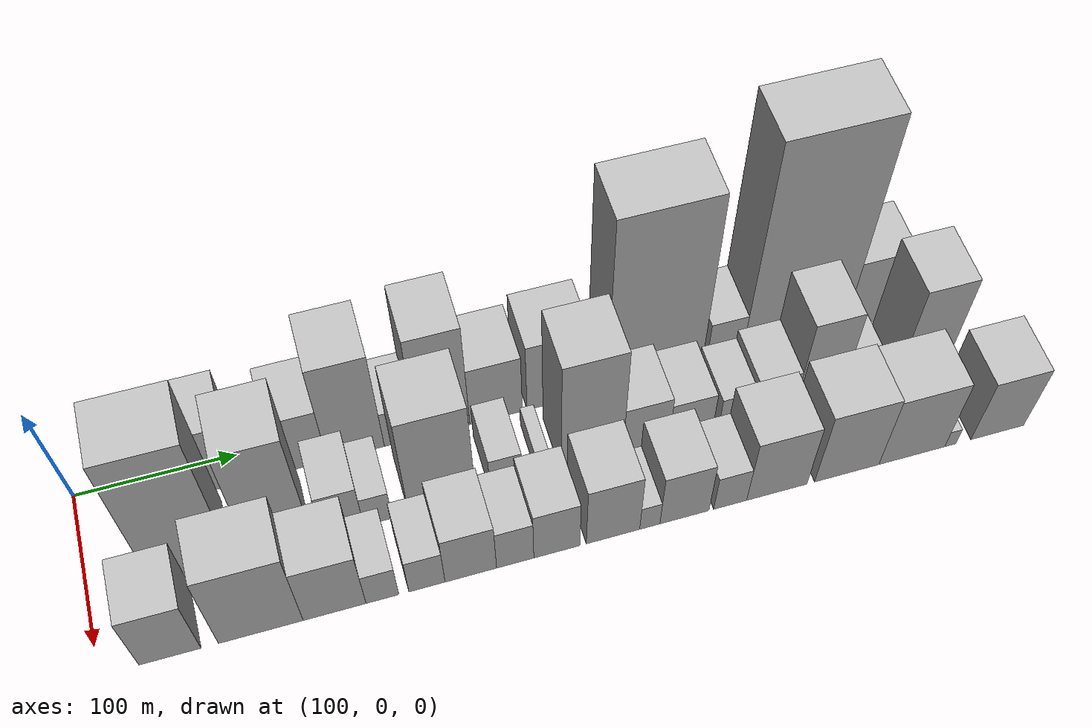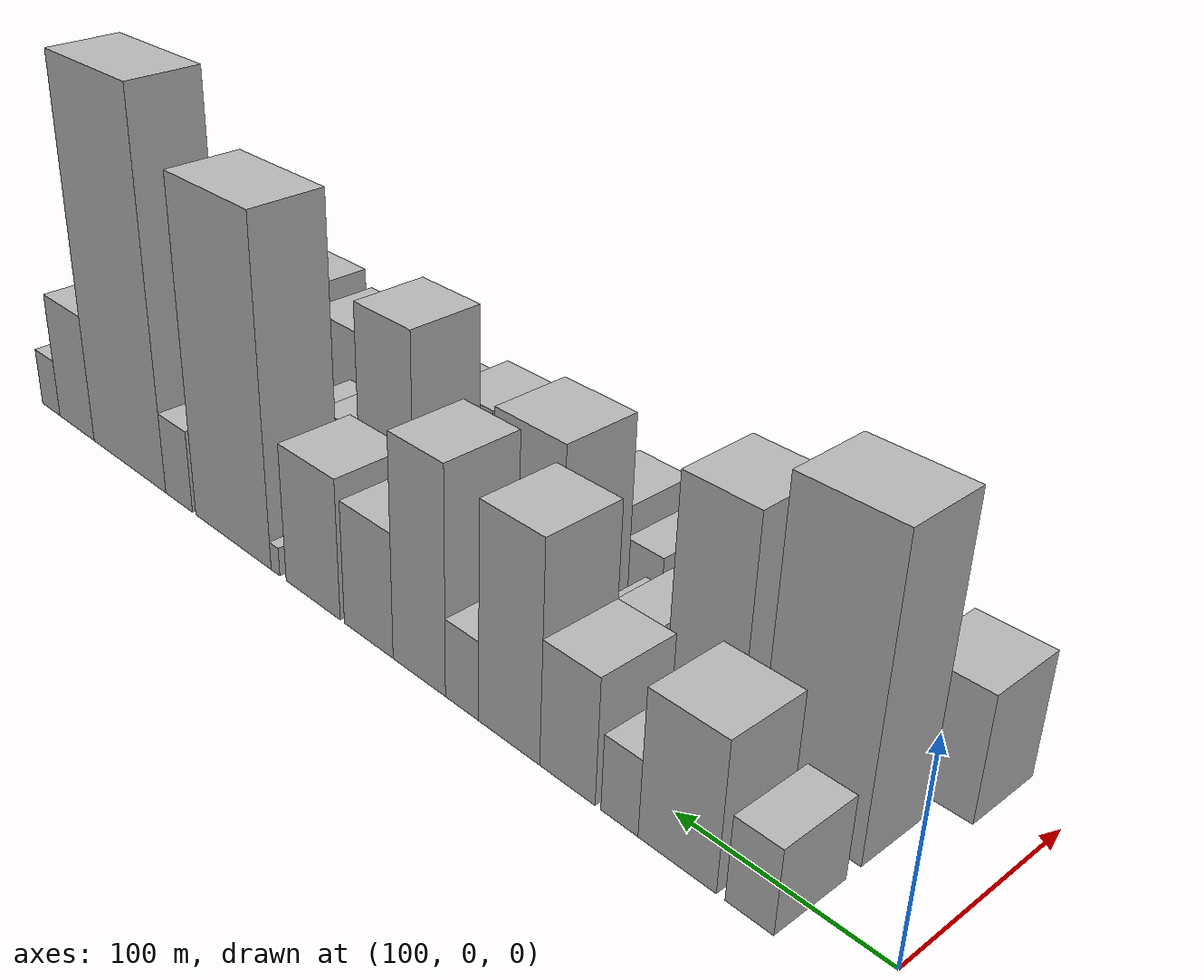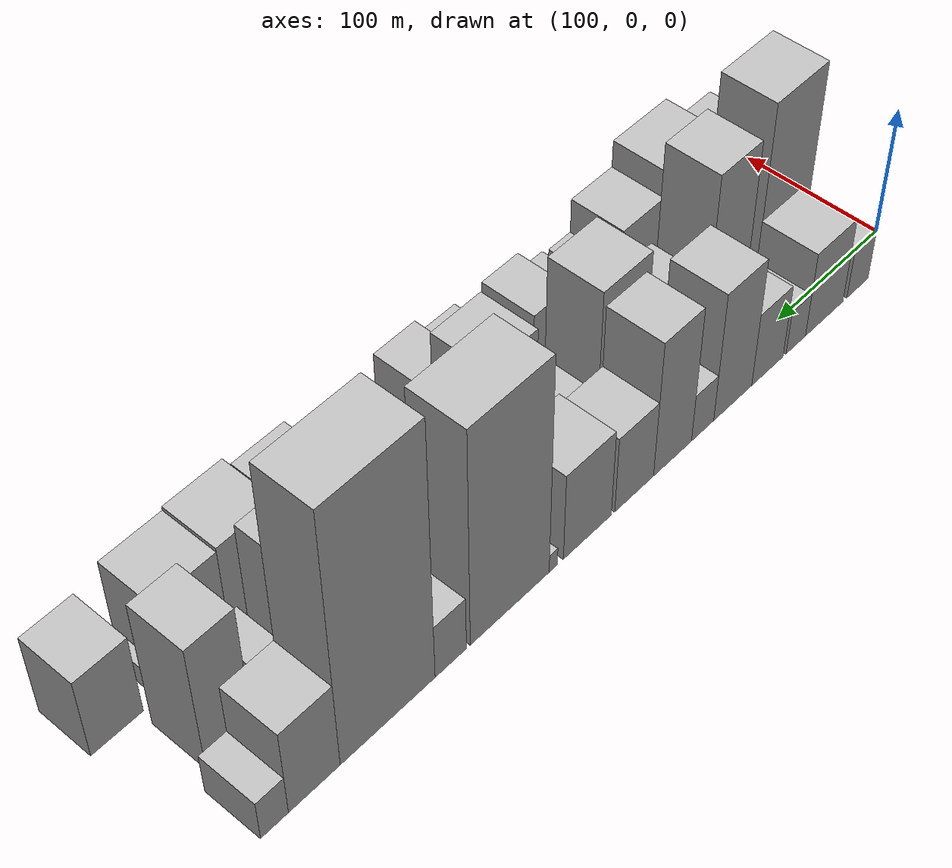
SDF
<sdf version="1.6">
 <world name="default">
  <model name="building_16">
   <static>1</static>
   <pose>100.0000 47.8059 0 0.000000 0.000000 0.000000</pose>
   <link name="link">
    <pose>0 0 19.50 0 0 0</pose>
    <collision name="collision"><geometry><box><size>40.0000 21.7824 39.0000</size></box></geometry></collision>
    <visual name="visual">
     <cast_shadows>0</cast_shadows>
     <geometry><box><size>40.0000 21.7824 39.0000</size></box></geometry>
     <material>
      <script>
       <uri>model://HANNAS_wall/materials/scripts</uri>
       <uri>model://HANNAS_wall/materials/textures</uri>
       <name>vrc/HANNAS_wall</name>
      </script>
     </material>
    </visual>
   </link>
  </model>
  <model name="building_17">
   <static>1</static>
   <pose>100.0000 81.5890 0 0.000000 0.000000 0.000000</pose>
   <link name="link">
    <pose>0 0 34.50 0 0 0</pose>
    <collision name="collision"><geometry><box><size>40.0000 37.7838 69.0000</size></box></geometry></collision>
    <visual name="visual">
     <cast_shadows>0</cast_shadows>
     <geometry><box><size>40.0000 37.7838 69.0000</size></box></geometry>
     <material>
      <script>
       <uri>model://HANNAS_wall/materials/scripts</uri>
       <uri>model://HANNAS_wall/materials/textures</uri>
       <name>vrc/HANNAS_wall</name>
      </script>
     </material>
    </visual>
   </link>
  </model>
  <model name="building_18">
   <static>1</static>
   <pose>100.0000 110.0297 0 0.000000 0.000000 0.000000</pose>
   <link name="link">
    <pose>0 0 18.00 0 0 0</pose>
    <collision name="collision"><geometry><box><size>40.0000 19.0977 36.0000</size></box></geometry></collision>
    <visual name="visual">
     <cast_shadows>0</cast_shadows>
     <geometry><box><size>40.0000 19.0977 36.0000</size></box></geometry>
     <material>
      <script>
       <uri>model://HANNAS_wall/materials/scripts</uri>
       <uri>model://HANNAS_wall/materials/textures</uri>
       <name>vrc/HANNAS_wall</name>
      </script>
     </material>
    </visual>
   </link>
  </model>
  <model name="building_19">
   <static>1</static>
   <pose>100.0000 137.6985 0 0.000000 0.000000 0.000000</pose>
   <link name="link">
    <pose>0 0 30.00 0 0 0</pose>
    <collision name="collision"><geometry><box><size>40.0000 30.2399 60.0000</size></box></geometry></collision>
    <visual name="visual">
     <cast_shadows>0</cast_shadows>
     <geometry><box><size>40.0000 30.2399 60.0000</size></box></geometry>
     <material>
      <script>
       <uri>model://HANNAS_wall/materials/scripts</uri>
       <uri>model://HANNAS_wall/materials/textures</uri>
       <name>vrc/HANNAS_wall</name>
      </script>
     </material>
    </visual>
   </link>
  </model>
  <model name="building_20">
   <static>1</static>
   <pose>100.0000 170.7116 0 0.000000 0.000000 0.000000</pose>
   <link name="link">
    <pose>0 0 52.50 0 0 0</pose>
    <collision name="collision"><geometry><box><size>40.0000 35.7862 105.0000</size></box></geometry></collision>
    <visual name="visual">
     <cast_shadows>0</cast_shadows>
     <geometry><box><size>40.0000 35.7862 105.0000</size></box></geometry>
     <material>
      <script>
       <uri>model://HANNAS_wall/materials/scripts</uri>
       <uri>model://HANNAS_wall/materials/textures</uri>
       <name>vrc/HANNAS_wall</name>
      </script>
     </material>
    </visual>
   </link>
  </model>
  <model name="building_21">
   <static>1</static>
   <pose>100.0000 198.8116 0 0.000000 0.000000 0.000000</pose>
   <link name="link">
    <pose>0 0 19.50 0 0 0</pose>
    <collision name="collision"><geometry><box><size>40.0000 20.4138 39.0000</size></box></geometry></collision>
    <visual name="visual">
     <cast_shadows>0</cast_shadows>
     <geometry><box><size>40.0000 20.4138 39.0000</size></box></geometry>
     <material>
      <script>
       <uri>model://HANNAS_wall/materials/scripts</uri>
       <uri>model://HANNAS_wall/materials/textures</uri>
       <name>vrc/HANNAS_wall</name>
      </script>
     </material>
    </visual>
   </link>
  </model>
  <model name="building_22">
   <static>1</static>
   <pose>100.0000 226.1060 0 0.000000 0.000000 0.000000</pose>
   <link name="link">
    <pose>0 0 55.50 0 0 0</pose>
    <collision name="collision"><geometry><box><size>40.0000 34.1748 111.0000</size></box></geometry></collision>
    <visual name="visual">
     <cast_shadows>0</cast_shadows>
     <geometry><box><size>40.0000 34.1748 111.0000</size></box></geometry>
     <material>
      <script>
       <uri>model://HANNAS_wall/materials/scripts</uri>
       <uri>model://HANNAS_wall/materials/textures</uri>
       <name>vrc/HANNAS_wall</name>
      </script>
     </material>
    </visual>
   </link>
  </model>
  <model name="building_23">
   <static>1</static>
   <pose>100.0000 260.1984 0 0.000000 0.000000 0.000000</pose>
   <link name="link">
    <pose>0 0 31.50 0 0 0</pose>
    <collision name="collision"><geometry><box><size>40.0000 34.0099 63.0000</size></box></geometry></collision>
    <visual name="visual">
     <cast_shadows>0</cast_shadows>
     <geometry><box><size>40.0000 34.0099 63.0000</size></box></geometry>
     <material>
      <script>
       <uri>model://HANNAS_wall/materials/scripts</uri>
       <uri>model://HANNAS_wall/materials/textures</uri>
       <name>vrc/HANNAS_wall</name>
      </script>
     </material>
    </visual>
   </link>
  </model>
  <model name="building_24">
   <static>1</static>
   <pose>100.0000 300.5038 0 0.000000 0.000000 0.000000</pose>
   <link name="link">
    <pose>0 0 36.00 0 0 0</pose>
    <collision name="collision"><geometry><box><size>40.0000 40.6009 72.0000</size></box></geometry></collision>
    <visual name="visual">
     <cast_shadows>0</cast_shadows>
     <geometry><box><size>40.0000 40.6009 72.0000</size></box></geometry>
     <material>
      <script>
       <uri>model://HANNAS_wall/materials/scripts</uri>
       <uri>model://HANNAS_wall/materials/textures</uri>
       <name>vrc/HANNAS_wall</name>
      </script>
     </material>
    </visual>
   </link>
  </model>
  <model name="building_25">
   <static>1</static>
   <pose>100.0000 329.2157 0 0.000000 0.000000 0.000000</pose>
   <link name="link">
    <pose>0 0 7.50 0 0 0</pose>
    <collision name="collision"><geometry><box><size>40.0000 6.8229 15.0000</size></box></geometry></collision>
    <visual name="visual">
     <cast_shadows>0</cast_shadows>
     <geometry><box><size>40.0000 6.8229 15.0000</size></box></geometry>
     <material>
      <script>
       <uri>model://HANNAS_wall/materials/scripts</uri>
       <uri>model://HANNAS_wall/materials/textures</uri>
       <name>vrc/HANNAS_wall</name>
      </script>
     </material>
    </visual>
   </link>
  </model>
  <model name="building_26">
   <static>1</static>
   <pose>100.0000 364.3298 0 0.000000 0.000000 0.000000</pose>
   <link name="link">
    <pose>0 0 88.50 0 0 0</pose>
    <collision name="collision"><geometry><box><size>40.0000 63.4053 177.0000</size></box></geometry></collision>
    <visual name="visual">
     <cast_shadows>0</cast_shadows>
     <geometry><box><size>40.0000 63.4053 177.0000</size></box></geometry>
     <material>
      <script>
       <uri>model://HANNAS_wall/materials/scripts</uri>
       <uri>model://HANNAS_wall/materials/textures</uri>
       <name>vrc/HANNAS_wall</name>
      </script>
     </material>
    </visual>
   </link>
  </model>
  <model name="building_27">
   <static>1</static>
   <pose>100.0000 411.1410 0 0.000000 0.000000 0.000000</pose>
   <link name="link">
    <pose>0 0 22.50 0 0 0</pose>
    <collision name="collision"><geometry><box><size>40.0000 24.2172 45.0000</size></box></geometry></collision>
    <visual name="visual">
     <cast_shadows>0</cast_shadows>
     <geometry><box><size>40.0000 24.2172 45.0000</size></box></geometry>
     <material>
      <script>
       <uri>model://HANNAS_wall/materials/scripts</uri>
       <uri>model://HANNAS_wall/materials/textures</uri>
       <name>vrc/HANNAS_wall</name>
      </script>
     </material>
    </visual>
   </link>
  </model>
  <model name="building_28">
   <static>1</static>
   <pose>100.0000 458.4552 0 0.000000 0.000000 0.000000</pose>
   <link name="link">
    <pose>0 0 105.00 0 0 0</pose>
    <collision name="collision"><geometry><box><size>40.0000 70.4112 210.0000</size></box></geometry></collision>
    <visual name="visual">
     <cast_shadows>0</cast_shadows>
     <geometry><box><size>40.0000 70.4112 210.0000</size></box></geometry>
     <material>
      <script>
       <uri>model://HANNAS_wall/materials/scripts</uri>
       <uri>model://HANNAS_wall/materials/textures</uri>
       <name>vrc/HANNAS_wall</name>
      </script>
     </material>
    </visual>
   </link>
  </model>
  <model name="building_29">
   <static>1</static>
   <pose>100.0000 511.9510 0 0.000000 0.000000 0.000000</pose>
   <link name="link">
    <pose>0 0 36.00 0 0 0</pose>
    <collision name="collision"><geometry><box><size>40.0000 36.5804 72.0000</size></box></geometry></collision>
    <visual name="visual">
     <cast_shadows>0</cast_shadows>
     <geometry><box><size>40.0000 36.5804 72.0000</size></box></geometry>
     <material>
      <script>
       <uri>model://HANNAS_wall/materials/scripts</uri>
       <uri>model://HANNAS_wall/materials/textures</uri>
       <name>vrc/HANNAS_wall</name>
      </script>
     </material>
    </visual>
   </link>
  </model>
  <model name="building_30">
   <static>1</static>
   <pose>100.0000 539.8981 0 0.000000 0.000000 0.000000</pose>
   <link name="link">
    <pose>0 0 16.50 0 0 0</pose>
    <collision name="collision"><geometry><box><size>40.0000 19.3137 33.0000</size></box></geometry></collision>
    <visual name="visual">
     <cast_shadows>0</cast_shadows>
     <geometry><box><size>40.0000 19.3137 33.0000</size></box></geometry>
     <material>
      <script>
       <uri>model://HANNAS_wall/materials/scripts</uri>
       <uri>model://HANNAS_wall/materials/textures</uri>
       <name>vrc/HANNAS_wall</name>
      </script>
     </material>
    </visual>
   </link>
  </model>
  <model name="building_46">
   <static>1</static>
   <pose>149.0000 61.2822 0 0.000000 0.000000 0.000000</pose>
   <link name="link">
    <pose>0 0 72.00 0 0 0</pose>
    <collision name="collision"><geometry><box><size>40.0000 48.5079 144.0000</size></box></geometry></collision>
    <visual name="visual">
     <cast_shadows>0</cast_shadows>
     <geometry><box><size>40.0000 48.5079 144.0000</size></box></geometry>
     <material>
      <script>
       <uri>model://HANNAS_wall/materials/scripts</uri>
       <uri>model://HANNAS_wall/materials/textures</uri>
       <name>vrc/HANNAS_wall</name>
      </script>
     </material>
    </visual>
   </link>
  </model>
  <model name="building_47">
   <static>1</static>
   <pose>149.0000 114.5790 0 0.000000 0.000000 0.000000</pose>
   <link name="link">
    <pose>0 0 61.50 0 0 0</pose>
    <collision name="collision"><geometry><box><size>40.0000 38.0858 123.0000</size></box></geometry></collision>
    <visual name="visual">
     <cast_shadows>0</cast_shadows>
     <geometry><box><size>40.0000 38.0858 123.0000</size></box></geometry>
     <material>
      <script>
       <uri>model://HANNAS_wall/materials/scripts</uri>
       <uri>model://HANNAS_wall/materials/textures</uri>
       <name>vrc/HANNAS_wall</name>
      </script>
     </material>
    </visual>
   </link>
  </model>
  <model name="building_48">
   <static>1</static>
   <pose>149.0000 152.1578 0 0.000000 0.000000 0.000000</pose>
   <link name="link">
    <pose>0 0 24.00 0 0 0</pose>
    <collision name="collision"><geometry><box><size>40.0000 25.0718 48.0000</size></box></geometry></collision>
    <visual name="visual">
     <cast_shadows>0</cast_shadows>
     <geometry><box><size>40.0000 25.0718 48.0000</size></box></geometry>
     <material>
      <script>
       <uri>model://HANNAS_wall/materials/scripts</uri>
       <uri>model://HANNAS_wall/materials/textures</uri>
       <name>vrc/HANNAS_wall</name>
      </script>
     </material>
    </visual>
   </link>
  </model>
  <model name="building_49">
   <static>1</static>
   <pose>149.0000 173.4422 0 0.000000 0.000000 0.000000</pose>
   <link name="link">
    <pose>0 0 16.50 0 0 0</pose>
    <collision name="collision"><geometry><box><size>40.0000 17.4969 33.0000</size></box></geometry></collision>
    <visual name="visual">
     <cast_shadows>0</cast_shadows>
     <geometry><box><size>40.0000 17.4969 33.0000</size></box></geometry>
     <material>
      <script>
       <uri>model://HANNAS_wall/materials/scripts</uri>
       <uri>model://HANNAS_wall/materials/textures</uri>
       <name>vrc/HANNAS_wall</name>
      </script>
     </material>
    </visual>
   </link>
  </model>
  <model name="building_50">
   <static>1</static>
   <pose>149.0000 213.1417 0 0.000000 0.000000 0.000000</pose>
   <link name="link">
    <pose>0 0 54.00 0 0 0</pose>
    <collision name="collision"><geometry><box><size>40.0000 41.9022 108.0000</size></box></geometry></collision>
    <visual name="visual">
     <cast_shadows>0</cast_shadows>
     <geometry><box><size>40.0000 41.9022 108.0000</size></box></geometry>
     <material>
      <script>
       <uri>model://HANNAS_wall/materials/scripts</uri>
       <uri>model://HANNAS_wall/materials/textures</uri>
       <name>vrc/HANNAS_wall</name>
      </script>
     </material>
    </visual>
   </link>
  </model>
  <model name="building_51">
   <static>1</static>
   <pose>149.0000 253.2332 0 0.000000 0.000000 0.000000</pose>
   <link name="link">
    <pose>0 0 19.50 0 0 0</pose>
    <collision name="collision"><geometry><box><size>40.0000 20.2807 39.0000</size></box></geometry></collision>
    <visual name="visual">
     <cast_shadows>0</cast_shadows>
     <geometry><box><size>40.0000 20.2807 39.0000</size></box></geometry>
     <material>
      <script>
       <uri>model://HANNAS_wall/materials/scripts</uri>
       <uri>model://HANNAS_wall/materials/textures</uri>
       <name>vrc/HANNAS_wall</name>
      </script>
     </material>
    </visual>
   </link>
  </model>
  <model name="building_52">
   <static>1</static>
   <pose>149.0000 277.7060 0 0.000000 0.000000 0.000000</pose>
   <link name="link">
    <pose>0 0 10.50 0 0 0</pose>
    <collision name="collision"><geometry><box><size>40.0000 8.6649 21.0000</size></box></geometry></collision>
    <visual name="visual">
     <cast_shadows>0</cast_shadows>
     <geometry><box><size>40.0000 8.6649 21.0000</size></box></geometry>
     <material>
      <script>
       <uri>model://HANNAS_wall/materials/scripts</uri>
       <uri>model://HANNAS_wall/materials/textures</uri>
       <name>vrc/HANNAS_wall</name>
      </script>
     </material>
    </visual>
   </link>
  </model>
  <model name="building_53">
   <static>1</static>
   <pose>149.0000 307.6870 0 0.000000 0.000000 0.000000</pose>
   <link name="link">
    <pose>0 0 61.50 0 0 0</pose>
    <collision name="collision"><geometry><box><size>40.0000 39.2970 123.0000</size></box></geometry></collision>
    <visual name="visual">
     <cast_shadows>0</cast_shadows>
     <geometry><box><size>40.0000 39.2970 123.0000</size></box></geometry>
     <material>
      <script>
       <uri>model://HANNAS_wall/materials/scripts</uri>
       <uri>model://HANNAS_wall/materials/textures</uri>
       <name>vrc/HANNAS_wall</name>
      </script>
     </material>
    </visual>
   </link>
  </model>
  <model name="building_54">
   <static>1</static>
   <pose>149.0000 342.2039 0 0.000000 0.000000 0.000000</pose>
   <link name="link">
    <pose>0 0 28.50 0 0 0</pose>
    <collision name="collision"><geometry><box><size>40.0000 29.7369 57.0000</size></box></geometry></collision>
    <visual name="visual">
     <cast_shadows>0</cast_shadows>
     <geometry><box><size>40.0000 29.7369 57.0000</size></box></geometry>
     <material>
      <script>
       <uri>model://HANNAS_wall/materials/scripts</uri>
       <uri>model://HANNAS_wall/materials/textures</uri>
       <name>vrc/HANNAS_wall</name>
      </script>
     </material>
    </visual>
   </link>
  </model>
  <model name="building_55">
   <static>1</static>
   <pose>149.0000 371.1947 0 0.000000 0.000000 0.000000</pose>
   <link name="link">
    <pose>0 0 24.00 0 0 0</pose>
    <collision name="collision"><geometry><box><size>40.0000 28.2446 48.0000</size></box></geometry></collision>
    <visual name="visual">
     <cast_shadows>0</cast_shadows>
     <geometry><box><size>40.0000 28.2446 48.0000</size></box></geometry>
     <material>
      <script>
       <uri>model://HANNAS_wall/materials/scripts</uri>
       <uri>model://HANNAS_wall/materials/textures</uri>
       <name>vrc/HANNAS_wall</name>
      </script>
     </material>
    </visual>
   </link>
  </model>
  <model name="building_56">
   <static>1</static>
   <pose>149.0000 400.7414 0 0.000000 0.000000 0.000000</pose>
   <link name="link">
    <pose>0 0 19.50 0 0 0</pose>
    <collision name="collision"><geometry><box><size>40.0000 22.8489 39.0000</size></box></geometry></collision>
    <visual name="visual">
     <cast_shadows>0</cast_shadows>
     <geometry><box><size>40.0000 22.8489 39.0000</size></box></geometry>
     <material>
      <script>
       <uri>model://HANNAS_wall/materials/scripts</uri>
       <uri>model://HANNAS_wall/materials/textures</uri>
       <name>vrc/HANNAS_wall</name>
      </script>
     </material>
    </visual>
   </link>
  </model>
  <model name="building_57">
   <static>1</static>
   <pose>149.0000 425.8317 0 0.000000 0.000000 0.000000</pose>
   <link name="link">
    <pose>0 0 24.00 0 0 0</pose>
    <collision name="collision"><geometry><box><size>40.0000 27.3317 48.0000</size></box></geometry></collision>
    <visual name="visual">
     <cast_shadows>0</cast_shadows>
     <geometry><box><size>40.0000 27.3317 48.0000</size></box></geometry>
     <material>
      <script>
       <uri>model://HANNAS_wall/materials/scripts</uri>
       <uri>model://HANNAS_wall/materials/textures</uri>
       <name>vrc/HANNAS_wall</name>
      </script>
     </material>
    </visual>
   </link>
  </model>
  <model name="building_58">
   <static>1</static>
   <pose>149.0000 454.8856 0 0.000000 0.000000 0.000000</pose>
   <link name="link">
    <pose>0 0 49.50 0 0 0</pose>
    <collision name="collision"><geometry><box><size>40.0000 30.7761 99.0000</size></box></geometry></collision>
    <visual name="visual">
     <cast_shadows>0</cast_shadows>
     <geometry><box><size>40.0000 30.7761 99.0000</size></box></geometry>
     <material>
      <script>
       <uri>model://HANNAS_wall/materials/scripts</uri>
       <uri>model://HANNAS_wall/materials/textures</uri>
       <name>vrc/HANNAS_wall</name>
      </script>
     </material>
    </visual>
   </link>
  </model>
  <model name="building_59">
   <static>1</static>
   <pose>149.0000 486.8219 0 0.000000 0.000000 0.000000</pose>
   <link name="link">
    <pose>0 0 18.00 0 0 0</pose>
    <collision name="collision"><geometry><box><size>40.0000 21.0964 36.0000</size></box></geometry></collision>
    <visual name="visual">
     <cast_shadows>0</cast_shadows>
     <geometry><box><size>40.0000 21.0964 36.0000</size></box></geometry>
     <material>
      <script>
       <uri>model://HANNAS_wall/materials/scripts</uri>
       <uri>model://HANNAS_wall/materials/textures</uri>
       <name>vrc/HANNAS_wall</name>
      </script>
     </material>
    </visual>
   </link>
  </model>
  <model name="building_60">
   <static>1</static>
   <pose>149.0000 523.8615 0 0.000000 0.000000 0.000000</pose>
   <link name="link">
    <pose>0 0 52.50 0 0 0</pose>
    <collision name="collision"><geometry><box><size>40.0000 32.9828 105.0000</size></box></geometry></collision>
    <visual name="visual">
     <cast_shadows>0</cast_shadows>
     <geometry><box><size>40.0000 32.9828 105.0000</size></box></geometry>
     <material>
      <script>
       <uri>model://HANNAS_wall/materials/scripts</uri>
       <uri>model://HANNAS_wall/materials/textures</uri>
       <name>vrc/HANNAS_wall</name>
      </script>
     </material>
    </visual>
   </link>
  </model>
  <model name="building_77">
   <static>1</static>
   <pose>198.0000 40.7217 0 0.000000 0.000000 0.000000</pose>
   <link name="link">
    <pose>0 0 30.00 0 0 0</pose>
    <collision name="collision"><geometry><box><size>40.0000 35.5765 60.0000</size></box></geometry></collision>
    <visual name="visual">
     <cast_shadows>0</cast_shadows>
     <geometry><box><size>40.0000 35.5765 60.0000</size></box></geometry>
     <material>
      <script>
       <uri>model://HANNAS_wall/materials/scripts</uri>
       <uri>model://HANNAS_wall/materials/textures</uri>
       <name>vrc/HANNAS_wall</name>
      </script>
     </material>
    </visual>
   </link>
  </model>
  <model name="building_78">
   <static>1</static>
   <pose>198.0000 93.2149 0 0.000000 0.000000 0.000000</pose>
   <link name="link">
    <pose>0 0 42.00 0 0 0</pose>
    <collision name="collision"><geometry><box><size>40.0000 49.4100 84.0000</size></box></geometry></collision>
    <visual name="visual">
     <cast_shadows>0</cast_shadows>
     <geometry><box><size>40.0000 49.4100 84.0000</size></box></geometry>
     <material>
      <script>
       <uri>model://HANNAS_wall/materials/scripts</uri>
       <uri>model://HANNAS_wall/materials/textures</uri>
       <name>vrc/HANNAS_wall</name>
      </script>
     </material>
    </visual>
   </link>
  </model>
  <model name="building_79">
   <static>1</static>
   <pose>198.0000 136.4862 0 0.000000 0.000000 0.000000</pose>
   <link name="link">
    <pose>0 0 31.50 0 0 0</pose>
    <collision name="collision"><geometry><box><size>40.0000 37.1326 63.0000</size></box></geometry></collision>
    <visual name="visual">
     <cast_shadows>0</cast_shadows>
     <geometry><box><size>40.0000 37.1326 63.0000</size></box></geometry>
     <material>
      <script>
       <uri>model://HANNAS_wall/materials/scripts</uri>
       <uri>model://HANNAS_wall/materials/textures</uri>
       <name>vrc/HANNAS_wall</name>
      </script>
     </material>
    </visual>
   </link>
  </model>
  <model name="building_80">
   <static>1</static>
   <pose>198.0000 164.8287 0 0.000000 0.000000 0.000000</pose>
   <link name="link">
    <pose>0 0 18.00 0 0 0</pose>
    <collision name="collision"><geometry><box><size>40.0000 19.5524 36.0000</size></box></geometry></collision>
    <visual name="visual">
     <cast_shadows>0</cast_shadows>
     <geometry><box><size>40.0000 19.5524 36.0000</size></box></geometry>
     <material>
      <script>
       <uri>model://HANNAS_wall/materials/scripts</uri>
       <uri>model://HANNAS_wall/materials/textures</uri>
       <name>vrc/HANNAS_wall</name>
      </script>
     </material>
    </visual>
   </link>
  </model>
  <model name="building_81">
   <static>1</static>
   <pose>198.0000 191.5142 0 0.000000 0.000000 0.000000</pose>
   <link name="link">
    <pose>0 0 19.50 0 0 0</pose>
    <collision name="collision"><geometry><box><size>40.0000 21.8186 39.0000</size></box></geometry></collision>
    <visual name="visual">
     <cast_shadows>0</cast_shadows>
     <geometry><box><size>40.0000 21.8186 39.0000</size></box></geometry>
     <material>
      <script>
       <uri>model://HANNAS_wall/materials/scripts</uri>
       <uri>model://HANNAS_wall/materials/textures</uri>
       <name>vrc/HANNAS_wall</name>
      </script>
     </material>
    </visual>
   </link>
  </model>
  <model name="building_82">
   <static>1</static>
   <pose>198.0000 218.0733 0 0.000000 0.000000 0.000000</pose>
   <link name="link">
    <pose>0 0 27.00 0 0 0</pose>
    <collision name="collision"><geometry><box><size>40.0000 31.2995 54.0000</size></box></geometry></collision>
    <visual name="visual">
     <cast_shadows>0</cast_shadows>
     <geometry><box><size>40.0000 31.2995 54.0000</size></box></geometry>
     <material>
      <script>
       <uri>model://HANNAS_wall/materials/scripts</uri>
       <uri>model://HANNAS_wall/materials/textures</uri>
       <name>vrc/HANNAS_wall</name>
      </script>
     </material>
    </visual>
   </link>
  </model>
  <model name="building_83">
   <static>1</static>
   <pose>198.0000 245.1449 0 0.000000 0.000000 0.000000</pose>
   <link name="link">
    <pose>0 0 22.50 0 0 0</pose>
    <collision name="collision"><geometry><box><size>40.0000 22.8438 45.0000</size></box></geometry></collision>
    <visual name="visual">
     <cast_shadows>0</cast_shadows>
     <geometry><box><size>40.0000 22.8438 45.0000</size></box></geometry>
     <material>
      <script>
       <uri>model://HANNAS_wall/materials/scripts</uri>
       <uri>model://HANNAS_wall/materials/textures</uri>
       <name>vrc/HANNAS_wall</name>
      </script>
     </material>
    </visual>
   </link>
  </model>
  <model name="building_84">
   <static>1</static>
   <pose>198.0000 270.7803 0 0.000000 0.000000 0.000000</pose>
   <link name="link">
    <pose>0 0 27.00 0 0 0</pose>
    <collision name="collision"><geometry><box><size>40.0000 28.4268 54.0000</size></box></geometry></collision>
    <visual name="visual">
     <cast_shadows>0</cast_shadows>
     <geometry><box><size>40.0000 28.4268 54.0000</size></box></geometry>
     <material>
      <script>
       <uri>model://HANNAS_wall/materials/scripts</uri>
       <uri>model://HANNAS_wall/materials/textures</uri>
       <name>vrc/HANNAS_wall</name>
      </script>
     </material>
    </visual>
   </link>
  </model>
  <model name="building_85">
   <static>1</static>
   <pose>198.0000 305.6921 0 0.000000 0.000000 0.000000</pose>
   <link name="link">
    <pose>0 0 33.00 0 0 0</pose>
    <collision name="collision"><geometry><box><size>40.0000 33.3968 66.0000</size></box></geometry></collision>
    <visual name="visual">
     <cast_shadows>0</cast_shadows>
     <geometry><box><size>40.0000 33.3968 66.0000</size></box></geometry>
     <material>
      <script>
       <uri>model://HANNAS_wall/materials/scripts</uri>
       <uri>model://HANNAS_wall/materials/textures</uri>
       <name>vrc/HANNAS_wall</name>
      </script>
     </material>
    </visual>
   </link>
  </model>
  <model name="building_86">
   <static>1</static>
   <pose>198.0000 328.7711 0 0.000000 0.000000 0.000000</pose>
   <link name="link">
    <pose>0 0 13.50 0 0 0</pose>
    <collision name="collision"><geometry><box><size>40.0000 12.7613 27.0000</size></box></geometry></collision>
    <visual name="visual">
     <cast_shadows>0</cast_shadows>
     <geometry><box><size>40.0000 12.7613 27.0000</size></box></geometry>
     <material>
      <script>
       <uri>model://HANNAS_wall/materials/scripts</uri>
       <uri>model://HANNAS_wall/materials/textures</uri>
       <name>vrc/HANNAS_wall</name>
      </script>
     </material>
    </visual>
   </link>
  </model>
  <model name="building_87">
   <static>1</static>
   <pose>198.0000 350.7288 0 0.000000 0.000000 0.000000</pose>
   <link name="link">
    <pose>0 0 28.50 0 0 0</pose>
    <collision name="collision"><geometry><box><size>40.0000 31.1541 57.0000</size></box></geometry></collision>
    <visual name="visual">
     <cast_shadows>0</cast_shadows>
     <geometry><box><size>40.0000 31.1541 57.0000</size></box></geometry>
     <material>
      <script>
       <uri>model://HANNAS_wall/materials/scripts</uri>
       <uri>model://HANNAS_wall/materials/textures</uri>
       <name>vrc/HANNAS_wall</name>
      </script>
     </material>
    </visual>
   </link>
  </model>
  <model name="building_88">
   <static>1</static>
   <pose>198.0000 379.8709 0 0.000000 0.000000 0.000000</pose>
   <link name="link">
    <pose>0 0 19.50 0 0 0</pose>
    <collision name="collision"><geometry><box><size>40.0000 21.1300 39.0000</size></box></geometry></collision>
    <visual name="visual">
     <cast_shadows>0</cast_shadows>
     <geometry><box><size>40.0000 21.1300 39.0000</size></box></geometry>
     <material>
      <script>
       <uri>model://HANNAS_wall/materials/scripts</uri>
       <uri>model://HANNAS_wall/materials/textures</uri>
       <name>vrc/HANNAS_wall</name>
      </script>
     </material>
    </visual>
   </link>
  </model>
  <model name="building_89">
   <static>1</static>
   <pose>198.0000 409.9633 0 0.000000 0.000000 0.000000</pose>
   <link name="link">
    <pose>0 0 34.50 0 0 0</pose>
    <collision name="collision"><geometry><box><size>40.0000 39.0547 69.0000</size></box></geometry></collision>
    <visual name="visual">
     <cast_shadows>0</cast_shadows>
     <geometry><box><size>40.0000 39.0547 69.0000</size></box></geometry>
     <material>
      <script>
       <uri>model://HANNAS_wall/materials/scripts</uri>
       <uri>model://HANNAS_wall/materials/textures</uri>
       <name>vrc/HANNAS_wall</name>
      </script>
     </material>
    </visual>
   </link>
  </model>
  <model name="building_90">
   <static>1</static>
   <pose>198.0000 455.6317 0 0.000000 0.000000 0.000000</pose>
   <link name="link">
    <pose>0 0 39.00 0 0 0</pose>
    <collision name="collision"><geometry><box><size>40.0000 42.2822 78.0000</size></box></geometry></collision>
    <visual name="visual">
     <cast_shadows>0</cast_shadows>
     <geometry><box><size>40.0000 42.2822 78.0000</size></box></geometry>
     <material>
      <script>
       <uri>model://HANNAS_wall/materials/scripts</uri>
       <uri>model://HANNAS_wall/materials/textures</uri>
       <name>vrc/HANNAS_wall</name>
      </script>
     </material>
    </visual>
   </link>
  </model>
  <model name="building_91">
   <static>1</static>
   <pose>198.0000 498.6990 0 0.000000 0.000000 0.000000</pose>
   <link name="link">
    <pose>0 0 37.50 0 0 0</pose>
    <collision name="collision"><geometry><box><size>40.0000 43.8525 75.0000</size></box></geometry></collision>
    <visual name="visual">
     <cast_shadows>0</cast_shadows>
     <geometry><box><size>40.0000 43.8525 75.0000</size></box></geometry>
     <material>
      <script>
       <uri>model://HANNAS_wall/materials/scripts</uri>
       <uri>model://HANNAS_wall/materials/textures</uri>
       <name>vrc/HANNAS_wall</name>
      </script>
     </material>
    </visual>
   </link>
  </model>
  <model name="building_92">
   <static>1</static>
   <pose>198.0000 524.4066 0 0.000000 0.000000 0.000000</pose>
   <link name="link">
    <pose>0 0 9.00 0 0 0</pose>
    <collision name="collision"><geometry><box><size>40.0000 7.5626 18.0000</size></box></geometry></collision>
    <visual name="visual">
     <cast_shadows>0</cast_shadows>
     <geometry><box><size>40.0000 7.5626 18.0000</size></box></geometry>
     <material>
      <script>
       <uri>model://HANNAS_wall/materials/scripts</uri>
       <uri>model://HANNAS_wall/materials/textures</uri>
       <name>vrc/HANNAS_wall</name>
      </script>
     </material>
    </visual>
   </link>
  </model>
  <model name="building_93">
   <static>1</static>
   <pose>198.0000 556.1269 0 0.000000 0.000000 0.000000</pose>
   <link name="link">
    <pose>0 0 33.00 0 0 0</pose>
    <collision name="collision"><geometry><box><size>40.0000 35.8781 66.0000</size></box></geometry></collision>
    <visual name="visual">
     <cast_shadows>0</cast_shadows>
     <geometry><box><size>40.0000 35.8781 66.0000</size></box></geometry>
     <material>
      <script>
       <uri>model://HANNAS_wall/materials/scripts</uri>
       <uri>model://HANNAS_wall/materials/textures</uri>
       <name>vrc/HANNAS_wall</name>
      </script>
     </material>
    </visual>
   </link>
  </model>
 </world>
</sdf>
